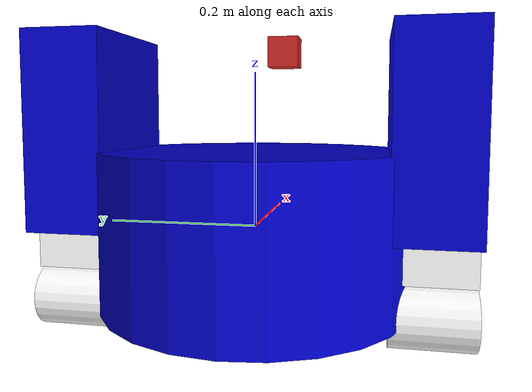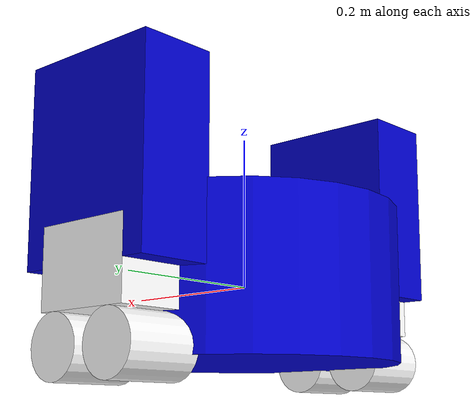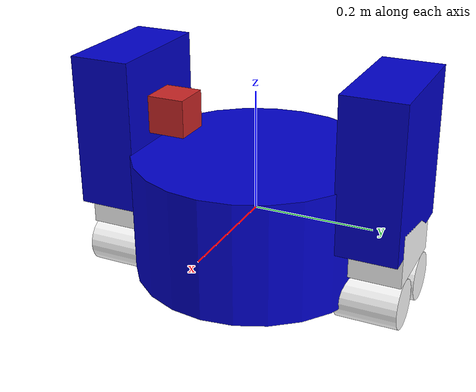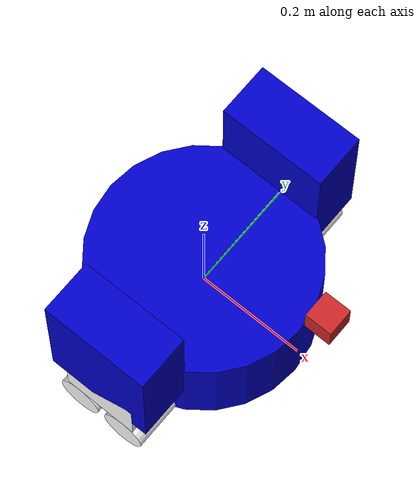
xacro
<?xml version="1.0"?>
<robot name="junkbot" xmlns:xacro="http://ros.org/wiki/xacro">

  <xacro:property name="width" value="0.2" />
  <xacro:property name="leglen" value="0.25" />
  <xacro:property name="polelen" value="0.2" />
  <xacro:property name="bodylen" value="0.2" />
  <xacro:property name="baselen" value="0.14" />
  <xacro:property name="wheeldiam" value="0.08" />
  <xacro:property name="pi" value="3.1415" />

  <xacro:property name="camera_box_size" value="0.05" /> <!-- Size of square 'camera' box -->
  <xacro:property name="height3" value="0.25" /> <!-- placement of the camera -->
  <xacro:property name="axel_offset" value="0.0" /> <!-- offset -->

  <material name="blue">
    <color rgba="0 0 0.8 1"/>
  </material>

  <material name="black">
    <color rgba="0 0 0 1"/>
  </material>

  <material name="white">
    <color rgba="1 1 1 1"/>
  </material>

  <xacro:macro name="default_inertial" params="mass">
    <inertial>
      <mass value="${mass}" />
      <inertia ixx="1.0" ixy="0.0" ixz="0.0" iyy="1.0" iyz="0.0" izz="1.0" />
    </inertial>
  </xacro:macro>

  <link name="base_link">
    <visual>
      <geometry>
        <cylinder radius="${width}" length="${bodylen}"/>
      </geometry>
      <material name="blue"/>
    </visual>
    <collision>
      <geometry>
        <cylinder radius="${width}" length="${bodylen}"/>
      </geometry>
    </collision>
    <xacro:default_inertial mass="10"/>
  </link>

  <xacro:macro name="wheel" params="prefix suffix reflect">

    <link name="${prefix}_${suffix}_wheel">
      <visual>
        <origin xyz="0 0 0" rpy="${pi/2} 0 0" />
        <geometry>
          <cylinder radius="${wheeldiam/2}" length="0.1"/>
        </geometry>
        <material name="white"/>
      </visual>
      <collision>
        <origin xyz="0 0 0" rpy="${pi/2} 0 0" />
        <geometry>
          <cylinder radius="${wheeldiam/2}" length="0.1"/>
        </geometry>
      </collision>
      <xacro:default_inertial mass="1"/>
    </link>
    <joint name="${prefix}_${suffix}_wheel_joint" type="continuous">
      <axis xyz="0 1 0" rpy="0 0 0" />
      <parent link="${prefix}_base"/>
      <child link="${prefix}_${suffix}_wheel"/>
      <origin xyz="${baselen*reflect/3} 0 -${wheeldiam/2+.05}" rpy="0 0 0"/>
    </joint>

    <!-- This block provides the simulator (Gazebo) with information on a few additional
    physical properties. See http://gazebosim.org/tutorials/?tut=ros_urdf for more-->
    <gazebo reference="${prefix}_${suffix}_wheel">
      <mu1 value="200.0"/>
      <mu2 value="100.0"/>
      <kp value="10000000.0" />
      <kd value="1.0" />
      <material>Gazebo/Grey</material>
    </gazebo>

    <!-- This block connects the wheel joint to an actuator (motor), which informs both
    simulation and visualization of the robot -->
    <transmission name="${prefix}_${suffix}_wheel_trans">
      <type>transmission_interface/SimpleTransmission</type>
      <actuator name="${prefix}_${suffix}_wheel_motor">
        <mechanicalReduction>1</mechanicalReduction>
      </actuator>
      <joint name="${prefix}_${suffix}_wheel_joint">
        <hardwareInterface>VelocityJointInterface</hardwareInterface>
      </joint>
    </transmission>

  </xacro:macro>

  <xacro:macro name="leg" params="prefix reflect">
    <link name="${prefix}_leg">
      <visual>
        <geometry>
          <box size="${leglen} 0.1 0.2"/>
        </geometry>
        <origin xyz="0 0 -${leglen/2}" rpy="0 ${pi/2} 0"/>
        <material name="blue"/>
      </visual>
      <collision>
        <geometry>
          <box size="${leglen} 0.1 0.02"/>
        </geometry>
        <origin xyz="0 0 -${leglen/2}" rpy="0 ${pi/2} 0"/>
      </collision>
      <xacro:default_inertial mass="10"/>
    </link>

    <joint name="base_to_${prefix}_leg" type="fixed">
      <parent link="base_link"/>
      <child link="${prefix}_leg"/>
      <origin xyz="0 ${reflect*(width+.02)} 0.25" />
    </joint>

    <link name="${prefix}_base">
      <visual>
        <geometry>
          <box size="${baselen} 0.1 0.1"/>
        </geometry>
        <material name="white"/>
      </visual>
      <collision>
        <geometry>
          <box size="${baselen} 0.1 0.1"/>
        </geometry>
      </collision>
      <xacro:default_inertial mass="10"/>
    </link>

    <joint name="${prefix}_base_joint" type="fixed">
      <parent link="${prefix}_leg"/>
      <child link="${prefix}_base"/>
      <origin xyz="0 0 ${-leglen}" />
    </joint>
    <xacro:wheel prefix="${prefix}" suffix="front" reflect="1"/>
    <xacro:wheel prefix="${prefix}" suffix="back" reflect="-1"/>
  </xacro:macro>
  <xacro:leg prefix="right" reflect="-1" />
  <xacro:leg prefix="left" reflect="1" />

  <!-- Gazebo plugin for ROS Control -->
  <gazebo>
    <plugin name="gazebo_ros_control" filename="libgazebo_ros_control.so">
      <robotNamespace>/</robotNamespace>
    </plugin>
  </gazebo>

<joint name="camera_joint" type="fixed">
    <axis xyz="1 0 0" />
    <origin xyz="${bodylen+camera_box_size} 0 ${height3} " rpy="0 0 0"/>
    <parent link="base_link"/>
    <child link="camera_link"/>
  </joint>

  <!-- Camera -->
  <link name="camera_link">
    <collision>
      <origin xyz="0 0 0" rpy="0 0 0"/>
      <geometry>
    <box size="${camera_box_size} ${camera_box_size} ${camera_box_size}"/>
      </geometry>
    </collision>

    <visual>
      <origin xyz="0 0 0" rpy="0 0 0"/>
      <geometry>
    <box size="${camera_box_size} ${camera_box_size} ${camera_box_size}"/>
      </geometry>
      <material name="red"/>
    </visual>

    <inertial>
      <mass value="1e-5" />
      <origin xyz="0 0 0" rpy="0 0 0"/>
      <inertia ixx="1e-6" ixy="0" ixz="0" iyy="1e-6" iyz="0" izz="1e-6" />
    </inertial>
  </link>

<!-- camera -->
  <gazebo reference="camera_link">
    <sensor type="camera" name="camera1">
      <update_rate>30.0</update_rate>
      <camera name="head">
        <horizontal_fov>1.3962634</horizontal_fov>
        <image>
          <width>800</width>
          <height>800</height>
          <format>R8G8B8</format>
        </image>
        <clip>
          <near>0.02</near>
          <far>300</far>
        </clip>
        <noise>
          <type>gaussian</type>
          <!-- Noise is sampled independently per pixel on each frame.
               That pixel's noise value is added to each of its color
               channels, which at that point lie in the range [0,1]. -->
          <mean>0.0</mean>
          <stddev>0.007</stddev>
        </noise>
      </camera>
      <plugin name="camera_controller" filename="libgazebo_ros_camera.so">
        <alwaysOn>true</alwaysOn>
        <updateRate>0.0</updateRate>
        <cameraName>rrbot/camera1</cameraName>
        <imageTopicName>image_raw</imageTopicName>
        <cameraInfoTopicName>camera_info</cameraInfoTopicName>
        <frameName>camera_link</frameName>
        <hackBaseline>0.07</hackBaseline>
        <distortionK1>0.0</distortionK1>
        <distortionK2>0.0</distortionK2>
        <distortionK3>0.0</distortionK3>
        <distortionT1>0.0</distortionT1>
        <distortionT2>0.0</distortionT2>
      </plugin>
    </sensor>
  </gazebo>

</robot>
